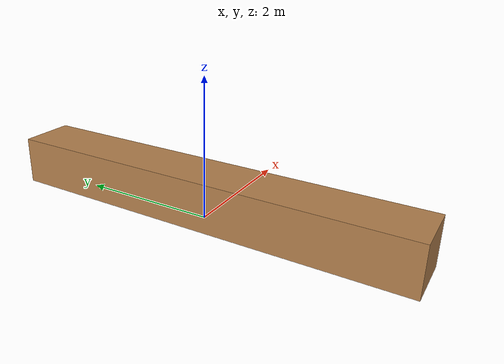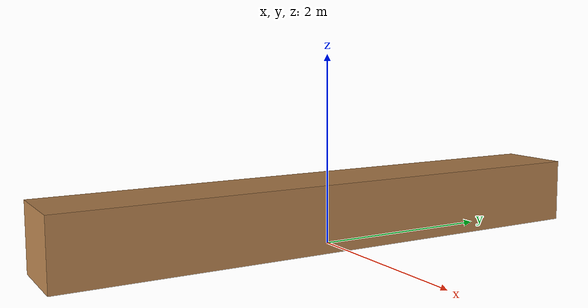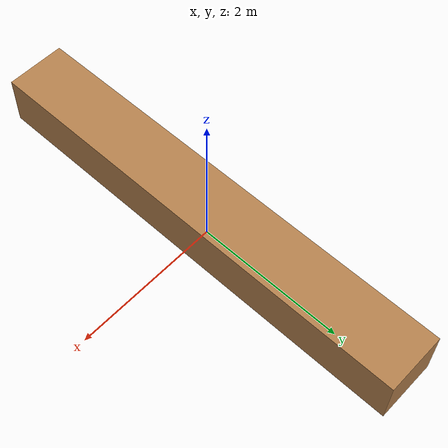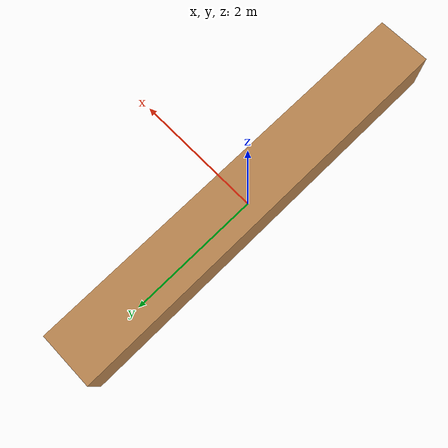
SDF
<?xml version="1.0" encoding="UTF-8"?>
<sdf version='1.9'>
  <model name='table'>
    <static>true</static>

    <link name='link'>

      <pose>0 0 0.35 0 0 0</pose>

      <collision name="collision">
        <geometry>
          <box>
            <size>0.8 6 0.7</size>
          </box>
        </geometry>
      </collision>

      <visual name="visual">
        <geometry>
          <box>
            <size>0.8 6 0.7</size>
          </box>
        </geometry>
        <material>
          <ambient>0.7 0.5 0.3 1</ambient>
          <diffuse>0.7 0.5 0.3 1</diffuse>
        </material>
      </visual>

    </link>

  </model>
</sdf>
